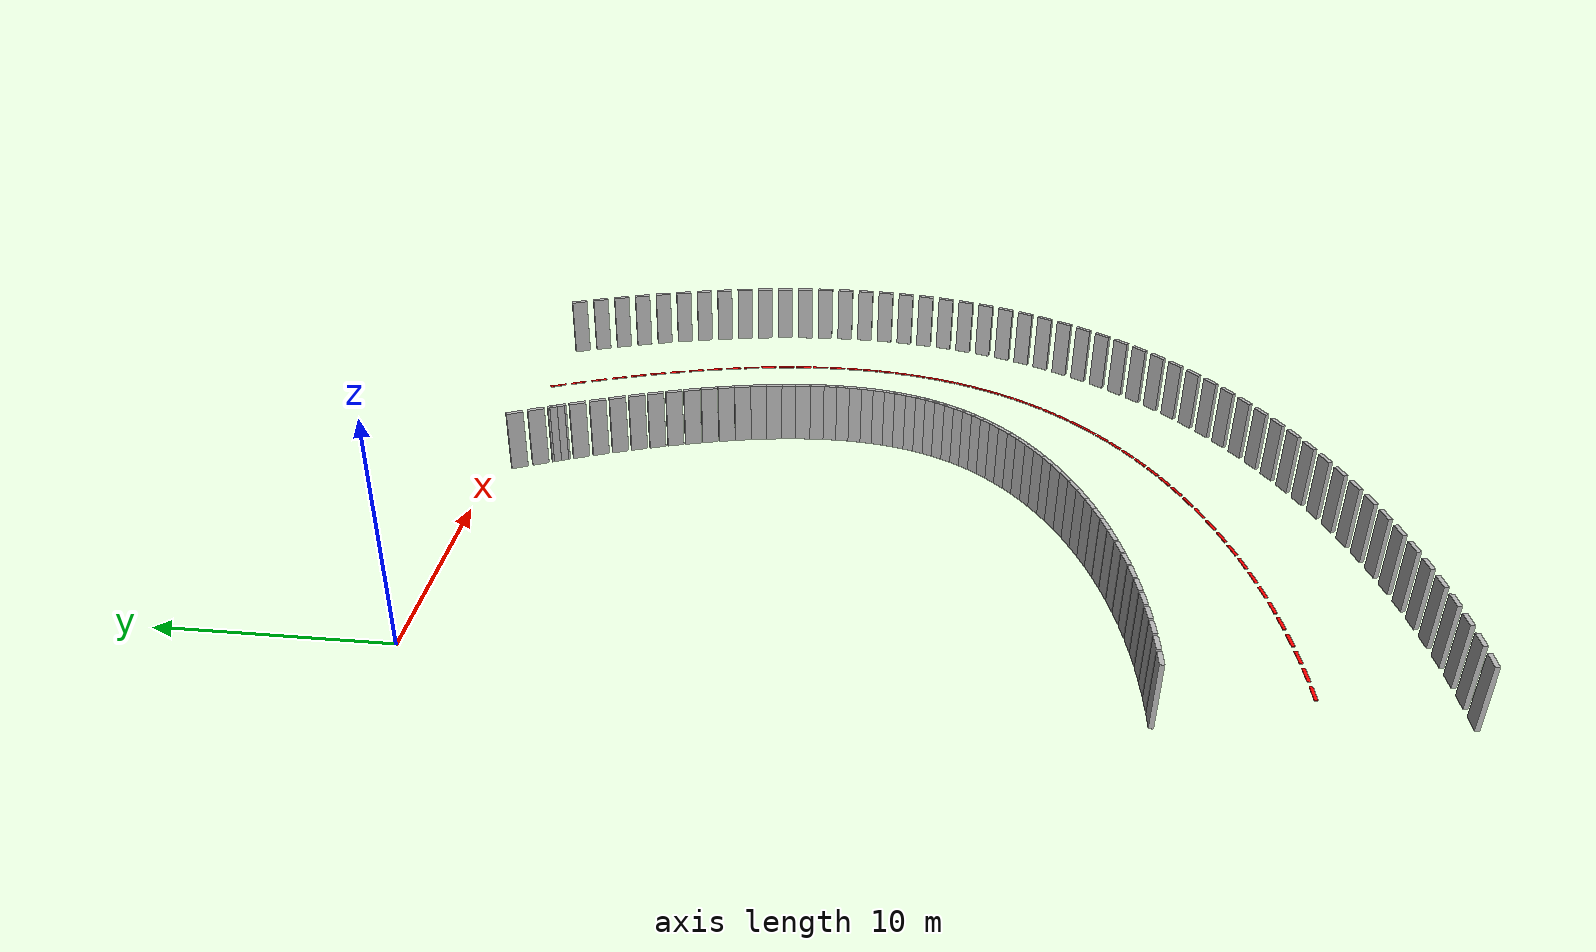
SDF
<sdf version="1.7">
 <model name="track_walls">
  <static>true</static>
  <link name="right_0">
   <pose>16.524 -2.453 0.5 0 0 -1.150</pose>
   <collision name="c"><geometry><box><size>0.8 0.2 3.0</size></box></geometry></collision>
   <visual name="v"><geometry><box><size>0.8 0.2 3.0</size></box></geometry></visual>
  </link>
  <link name="right_1">
   <pose>16.955 -3.413 0.5 0 0 -1.158</pose>
   <collision name="c"><geometry><box><size>0.8 0.2 3.0</size></box></geometry></collision>
   <visual name="v"><geometry><box><size>0.8 0.2 3.0</size></box></geometry></visual>
  </link>
  <link name="center_1">
   <pose>22.450 -1.004 0.010 0 0 -1.158</pose>
   <visual name="v">
    <geometry><box><size>0.8 0.15 0.02</size></box></geometry>
    <material><ambient>1 0 0 1</ambient><diffuse>1 0 0 1</diffuse></material>
   </visual>
  </link>
  <link name="right_2">
   <pose>17.345 -4.324 0.5 0 0 -1.174</pose>
   <collision name="c"><geometry><box><size>0.8 0.2 3.0</size></box></geometry></collision>
   <visual name="v"><geometry><box><size>0.8 0.2 3.0</size></box></geometry></visual>
  </link>
  <link name="center_2">
   <pose>22.880 -2.007 0.010 0 0 -1.174</pose>
   <visual name="v">
    <geometry><box><size>0.8 0.15 0.02</size></box></geometry>
    <material><ambient>1 0 0 1</ambient><diffuse>1 0 0 1</diffuse></material>
   </visual>
  </link>
  <link name="left_3">
   <pose>28.864 -0.792 0.5 0 0 -1.192</pose>
   <collision name="c"><geometry><box><size>0.8 0.2 3.0</size></box></geometry></collision>
   <visual name="v"><geometry><box><size>0.8 0.2 3.0</size></box></geometry></visual>
  </link>
  <link name="right_3">
   <pose>17.714 -5.226 0.5 0 0 -1.192</pose>
   <collision name="c"><geometry><box><size>0.8 0.2 3.0</size></box></geometry></collision>
   <visual name="v"><geometry><box><size>0.8 0.2 3.0</size></box></geometry></visual>
  </link>
  <link name="center_3">
   <pose>23.289 -3.009 0.010 0 0 -1.192</pose>
   <visual name="v">
    <geometry><box><size>0.8 0.15 0.02</size></box></geometry>
    <material><ambient>1 0 0 1</ambient><diffuse>1 0 0 1</diffuse></material>
   </visual>
  </link>
  <link name="left_4">
   <pose>29.293 -1.899 0.5 0 0 -1.212</pose>
   <collision name="c"><geometry><box><size>0.8 0.2 3.0</size></box></geometry></collision>
   <visual name="v"><geometry><box><size>0.8 0.2 3.0</size></box></geometry></visual>
  </link>
  <link name="right_4">
   <pose>18.058 -6.117 0.5 0 0 -1.212</pose>
   <collision name="c"><geometry><box><size>0.8 0.2 3.0</size></box></geometry></collision>
   <visual name="v"><geometry><box><size>0.8 0.2 3.0</size></box></geometry></visual>
  </link>
  <link name="center_4">
   <pose>23.675 -4.008 0.010 0 0 -1.212</pose>
   <visual name="v">
    <geometry><box><size>0.8 0.15 0.02</size></box></geometry>
    <material><ambient>1 0 0 1</ambient><diffuse>1 0 0 1</diffuse></material>
   </visual>
  </link>
  <link name="left_5">
   <pose>29.697 -3.011 0.5 0 0 -1.232</pose>
   <collision name="c"><geometry><box><size>0.8 0.2 3.0</size></box></geometry></collision>
   <visual name="v"><geometry><box><size>0.8 0.2 3.0</size></box></geometry></visual>
  </link>
  <link name="right_5">
   <pose>18.378 -6.996 0.5 0 0 -1.232</pose>
   <collision name="c"><geometry><box><size>0.8 0.2 3.0</size></box></geometry></collision>
   <visual name="v"><geometry><box><size>0.8 0.2 3.0</size></box></geometry></visual>
  </link>
  <link name="center_5">
   <pose>24.038 -5.004 0.010 0 0 -1.232</pose>
   <visual name="v">
    <geometry><box><size>0.8 0.15 0.02</size></box></geometry>
    <material><ambient>1 0 0 1</ambient><diffuse>1 0 0 1</diffuse></material>
   </visual>
  </link>
  <link name="left_6">
   <pose>30.077 -4.129 0.5 0 0 -1.254</pose>
   <collision name="c"><geometry><box><size>0.8 0.2 3.0</size></box></geometry></collision>
   <visual name="v"><geometry><box><size>0.8 0.2 3.0</size></box></geometry></visual>
  </link>
  <link name="right_6">
   <pose>18.673 -7.862 0.5 0 0 -1.254</pose>
   <collision name="c"><geometry><box><size>0.8 0.2 3.0</size></box></geometry></collision>
   <visual name="v"><geometry><box><size>0.8 0.2 3.0</size></box></geometry></visual>
  </link>
  <link name="center_6">
   <pose>24.375 -5.995 0.010 0 0 -1.254</pose>
   <visual name="v">
    <geometry><box><size>0.8 0.15 0.02</size></box></geometry>
    <material><ambient>1 0 0 1</ambient><diffuse>1 0 0 1</diffuse></material>
   </visual>
  </link>
  <link name="left_7">
   <pose>30.430 -5.251 0.5 0 0 -1.278</pose>
   <collision name="c"><geometry><box><size>0.8 0.2 3.0</size></box></geometry></collision>
   <visual name="v"><geometry><box><size>0.8 0.2 3.0</size></box></geometry></visual>
  </link>
  <link name="right_7">
   <pose>18.940 -8.713 0.5 0 0 -1.278</pose>
   <collision name="c"><geometry><box><size>0.8 0.2 3.0</size></box></geometry></collision>
   <visual name="v"><geometry><box><size>0.8 0.2 3.0</size></box></geometry></visual>
  </link>
  <link name="center_7">
   <pose>24.685 -6.982 0.010 0 0 -1.278</pose>
   <visual name="v">
    <geometry><box><size>0.8 0.15 0.02</size></box></geometry>
    <material><ambient>1 0 0 1</ambient><diffuse>1 0 0 1</diffuse></material>
   </visual>
  </link>
  <link name="left_8">
   <pose>30.755 -6.378 0.5 0 0 -1.304</pose>
   <collision name="c"><geometry><box><size>0.8 0.2 3.0</size></box></geometry></collision>
   <visual name="v"><geometry><box><size>0.8 0.2 3.0</size></box></geometry></visual>
  </link>
  <link name="right_8">
   <pose>19.181 -9.548 0.5 0 0 -1.304</pose>
   <collision name="c"><geometry><box><size>0.8 0.2 3.0</size></box></geometry></collision>
   <visual name="v"><geometry><box><size>0.8 0.2 3.0</size></box></geometry></visual>
  </link>
  <link name="center_8">
   <pose>24.968 -7.963 0.010 0 0 -1.304</pose>
   <visual name="v">
    <geometry><box><size>0.8 0.15 0.02</size></box></geometry>
    <material><ambient>1 0 0 1</ambient><diffuse>1 0 0 1</diffuse></material>
   </visual>
  </link>
  <link name="left_9">
   <pose>31.049 -7.510 0.5 0 0 -1.331</pose>
   <collision name="c"><geometry><box><size>0.8 0.2 3.0</size></box></geometry></collision>
   <visual name="v"><geometry><box><size>0.8 0.2 3.0</size></box></geometry></visual>
  </link>
  <link name="right_9">
   <pose>19.393 -10.365 0.5 0 0 -1.331</pose>
   <collision name="c"><geometry><box><size>0.8 0.2 3.0</size></box></geometry></collision>
   <visual name="v"><geometry><box><size>0.8 0.2 3.0</size></box></geometry></visual>
  </link>
  <link name="center_9">
   <pose>25.221 -8.937 0.010 0 0 -1.331</pose>
   <visual name="v">
    <geometry><box><size>0.8 0.15 0.02</size></box></geometry>
    <material><ambient>1 0 0 1</ambient><diffuse>1 0 0 1</diffuse></material>
   </visual>
  </link>
  <link name="left_10">
   <pose>31.310 -8.645 0.5 0 0 -1.359</pose>
   <collision name="c"><geometry><box><size>0.8 0.2 3.0</size></box></geometry></collision>
   <visual name="v"><geometry><box><size>0.8 0.2 3.0</size></box></geometry></visual>
  </link>
  <link name="right_10">
   <pose>19.577 -11.164 0.5 0 0 -1.359</pose>
   <collision name="c"><geometry><box><size>0.8 0.2 3.0</size></box></geometry></collision>
   <visual name="v"><geometry><box><size>0.8 0.2 3.0</size></box></geometry></visual>
  </link>
  <link name="center_10">
   <pose>25.443 -9.904 0.010 0 0 -1.359</pose>
   <visual name="v">
    <geometry><box><size>0.8 0.15 0.02</size></box></geometry>
    <material><ambient>1 0 0 1</ambient><diffuse>1 0 0 1</diffuse></material>
   </visual>
  </link>
  <link name="left_11">
   <pose>31.536 -9.784 0.5 0 0 -1.390</pose>
   <collision name="c"><geometry><box><size>0.8 0.2 3.0</size></box></geometry></collision>
   <visual name="v"><geometry><box><size>0.8 0.2 3.0</size></box></geometry></visual>
  </link>
  <link name="right_11">
   <pose>19.732 -11.943 0.5 0 0 -1.390</pose>
   <collision name="c"><geometry><box><size>0.8 0.2 3.0</size></box></geometry></collision>
   <visual name="v"><geometry><box><size>0.8 0.2 3.0</size></box></geometry></visual>
  </link>
  <link name="center_11">
   <pose>25.634 -10.863 0.010 0 0 -1.390</pose>
   <visual name="v">
    <geometry><box><size>0.8 0.15 0.02</size></box></geometry>
    <material><ambient>1 0 0 1</ambient><diffuse>1 0 0 1</diffuse></material>
   </visual>
  </link>
  <link name="left_12">
   <pose>31.727 -10.926 0.5 0 0 -1.422</pose>
   <collision name="c"><geometry><box><size>0.8 0.2 3.0</size></box></geometry></collision>
   <visual name="v"><geometry><box><size>0.8 0.2 3.0</size></box></geometry></visual>
  </link>
  <link name="right_12">
   <pose>19.858 -12.700 0.5 0 0 -1.422</pose>
   <collision name="c"><geometry><box><size>0.8 0.2 3.0</size></box></geometry></collision>
   <visual name="v"><geometry><box><size>0.8 0.2 3.0</size></box></geometry></visual>
  </link>
  <link name="center_12">
   <pose>25.792 -11.813 0.010 0 0 -1.422</pose>
   <visual name="v">
    <geometry><box><size>0.8 0.15 0.02</size></box></geometry>
    <material><ambient>1 0 0 1</ambient><diffuse>1 0 0 1</diffuse></material>
   </visual>
  </link>
  <link name="left_13">
   <pose>31.878 -12.071 0.5 0 0 -1.457</pose>
   <collision name="c"><geometry><box><size>0.8 0.2 3.0</size></box></geometry></collision>
   <visual name="v"><geometry><box><size>0.8 0.2 3.0</size></box></geometry></visual>
  </link>
  <link name="right_13">
   <pose>19.956 -13.436 0.5 0 0 -1.457</pose>
   <collision name="c"><geometry><box><size>0.8 0.2 3.0</size></box></geometry></collision>
   <visual name="v"><geometry><box><size>0.8 0.2 3.0</size></box></geometry></visual>
  </link>
  <link name="center_13">
   <pose>25.917 -12.754 0.010 0 0 -1.457</pose>
   <visual name="v">
    <geometry><box><size>0.8 0.15 0.02</size></box></geometry>
    <material><ambient>1 0 0 1</ambient><diffuse>1 0 0 1</diffuse></material>
   </visual>
  </link>
  <link name="left_14">
   <pose>31.988 -13.218 0.5 0 0 -1.493</pose>
   <collision name="c"><geometry><box><size>0.8 0.2 3.0</size></box></geometry></collision>
   <visual name="v"><geometry><box><size>0.8 0.2 3.0</size></box></geometry></visual>
  </link>
  <link name="right_14">
   <pose>20.024 -14.148 0.5 0 0 -1.493</pose>
   <collision name="c"><geometry><box><size>0.8 0.2 3.0</size></box></geometry></collision>
   <visual name="v"><geometry><box><size>0.8 0.2 3.0</size></box></geometry></visual>
  </link>
  <link name="center_14">
   <pose>26.006 -13.683 0.010 0 0 -1.493</pose>
   <visual name="v">
    <geometry><box><size>0.8 0.15 0.02</size></box></geometry>
    <material><ambient>1 0 0 1</ambient><diffuse>1 0 0 1</diffuse></material>
   </visual>
  </link>
  <link name="left_15">
   <pose>32.056 -14.367 0.5 0 0 -1.532</pose>
   <collision name="c"><geometry><box><size>0.8 0.2 3.0</size></box></geometry></collision>
   <visual name="v"><geometry><box><size>0.8 0.2 3.0</size></box></geometry></visual>
  </link>
  <link name="right_15">
   <pose>20.065 -14.837 0.5 0 0 -1.532</pose>
   <collision name="c"><geometry><box><size>0.8 0.2 3.0</size></box></geometry></collision>
   <visual name="v"><geometry><box><size>0.8 0.2 3.0</size></box></geometry></visual>
  </link>
  <link name="center_15">
   <pose>26.060 -14.602 0.010 0 0 -1.532</pose>
   <visual name="v">
    <geometry><box><size>0.8 0.15 0.02</size></box></geometry>
    <material><ambient>1 0 0 1</ambient><diffuse>1 0 0 1</diffuse></material>
   </visual>
  </link>
  <link name="left_16">
   <pose>32.078 -15.515 0.5 0 0 -1.572</pose>
   <collision name="c"><geometry><box><size>0.8 0.2 3.0</size></box></geometry></collision>
   <visual name="v"><geometry><box><size>0.8 0.2 3.0</size></box></geometry></visual>
  </link>
  <link name="right_16">
   <pose>20.078 -15.502 0.5 0 0 -1.572</pose>
   <collision name="c"><geometry><box><size>0.8 0.2 3.0</size></box></geometry></collision>
   <visual name="v"><geometry><box><size>0.8 0.2 3.0</size></box></geometry></visual>
  </link>
  <link name="center_16">
   <pose>26.078 -15.508 0.010 0 0 -1.572</pose>
   <visual name="v">
    <geometry><box><size>0.8 0.15 0.02</size></box></geometry>
    <material><ambient>1 0 0 1</ambient><diffuse>1 0 0 1</diffuse></material>
   </visual>
  </link>
  <link name="left_17">
   <pose>32.053 -16.662 0.5 0 0 -1.614</pose>
   <collision name="c"><geometry><box><size>0.8 0.2 3.0</size></box></geometry></collision>
   <visual name="v"><geometry><box><size>0.8 0.2 3.0</size></box></geometry></visual>
  </link>
  <link name="right_17">
   <pose>20.064 -16.142 0.5 0 0 -1.614</pose>
   <collision name="c"><geometry><box><size>0.8 0.2 3.0</size></box></geometry></collision>
   <visual name="v"><geometry><box><size>0.8 0.2 3.0</size></box></geometry></visual>
  </link>
  <link name="center_17">
   <pose>26.058 -16.402 0.010 0 0 -1.614</pose>
   <visual name="v">
    <geometry><box><size>0.8 0.15 0.02</size></box></geometry>
    <material><ambient>1 0 0 1</ambient><diffuse>1 0 0 1</diffuse></material>
   </visual>
  </link>
  <link name="left_18">
   <pose>31.978 -17.806 0.5 0 0 -1.658</pose>
   <collision name="c"><geometry><box><size>0.8 0.2 3.0</size></box></geometry></collision>
   <visual name="v"><geometry><box><size>0.8 0.2 3.0</size></box></geometry></visual>
  </link>
  <link name="right_18">
   <pose>20.024 -16.758 0.5 0 0 -1.658</pose>
   <collision name="c"><geometry><box><size>0.8 0.2 3.0</size></box></geometry></collision>
   <visual name="v"><geometry><box><size>0.8 0.2 3.0</size></box></geometry></visual>
  </link>
  <link name="center_18">
   <pose>26.001 -17.282 0.010 0 0 -1.658</pose>
   <visual name="v">
    <geometry><box><size>0.8 0.15 0.02</size></box></geometry>
    <material><ambient>1 0 0 1</ambient><diffuse>1 0 0 1</diffuse></material>
   </visual>
  </link>
  <link name="left_19">
   <pose>31.852 -18.946 0.5 0 0 -1.704</pose>
   <collision name="c"><geometry><box><size>0.8 0.2 3.0</size></box></geometry></collision>
   <visual name="v"><geometry><box><size>0.8 0.2 3.0</size></box></geometry></visual>
  </link>
  <link name="right_19">
   <pose>19.959 -17.351 0.5 0 0 -1.704</pose>
   <collision name="c"><geometry><box><size>0.8 0.2 3.0</size></box></geometry></collision>
   <visual name="v"><geometry><box><size>0.8 0.2 3.0</size></box></geometry></visual>
  </link>
  <link name="center_19">
   <pose>25.905 -18.148 0.010 0 0 -1.704</pose>
   <visual name="v">
    <geometry><box><size>0.8 0.15 0.02</size></box></geometry>
    <material><ambient>1 0 0 1</ambient><diffuse>1 0 0 1</diffuse></material>
   </visual>
  </link>
  <link name="left_20">
   <pose>31.673 -20.078 0.5 0 0 -1.752</pose>
   <collision name="c"><geometry><box><size>0.8 0.2 3.0</size></box></geometry></collision>
   <visual name="v"><geometry><box><size>0.8 0.2 3.0</size></box></geometry></visual>
  </link>
  <link name="right_20">
   <pose>19.869 -17.920 0.5 0 0 -1.752</pose>
   <collision name="c"><geometry><box><size>0.8 0.2 3.0</size></box></geometry></collision>
   <visual name="v"><geometry><box><size>0.8 0.2 3.0</size></box></geometry></visual>
  </link>
  <link name="center_20">
   <pose>25.771 -18.999 0.010 0 0 -1.752</pose>
   <visual name="v">
    <geometry><box><size>0.8 0.15 0.02</size></box></geometry>
    <material><ambient>1 0 0 1</ambient><diffuse>1 0 0 1</diffuse></material>
   </visual>
  </link>
  <link name="left_21">
   <pose>31.439 -21.201 0.5 0 0 -1.801</pose>
   <collision name="c"><geometry><box><size>0.8 0.2 3.0</size></box></geometry></collision>
   <visual name="v"><geometry><box><size>0.8 0.2 3.0</size></box></geometry></visual>
  </link>
  <link name="right_21">
   <pose>19.755 -18.468 0.5 0 0 -1.801</pose>
   <collision name="c"><geometry><box><size>0.8 0.2 3.0</size></box></geometry></collision>
   <visual name="v"><geometry><box><size>0.8 0.2 3.0</size></box></geometry></visual>
  </link>
  <link name="center_21">
   <pose>25.597 -19.835 0.010 0 0 -1.801</pose>
   <visual name="v">
    <geometry><box><size>0.8 0.15 0.02</size></box></geometry>
    <material><ambient>1 0 0 1</ambient><diffuse>1 0 0 1</diffuse></material>
   </visual>
  </link>
  <link name="left_22">
   <pose>31.150 -22.312 0.5 0 0 -1.851</pose>
   <collision name="c"><geometry><box><size>0.8 0.2 3.0</size></box></geometry></collision>
   <visual name="v"><geometry><box><size>0.8 0.2 3.0</size></box></geometry></visual>
  </link>
  <link name="right_22">
   <pose>19.617 -18.995 0.5 0 0 -1.851</pose>
   <collision name="c"><geometry><box><size>0.8 0.2 3.0</size></box></geometry></collision>
   <visual name="v"><geometry><box><size>0.8 0.2 3.0</size></box></geometry></visual>
  </link>
  <link name="center_22">
   <pose>25.384 -20.654 0.010 0 0 -1.851</pose>
   <visual name="v">
    <geometry><box><size>0.8 0.15 0.02</size></box></geometry>
    <material><ambient>1 0 0 1</ambient><diffuse>1 0 0 1</diffuse></material>
   </visual>
  </link>
  <link name="left_23">
   <pose>30.804 -23.408 0.5 0 0 -1.902</pose>
   <collision name="c"><geometry><box><size>0.8 0.2 3.0</size></box></geometry></collision>
   <visual name="v"><geometry><box><size>0.8 0.2 3.0</size></box></geometry></visual>
  </link>
  <link name="right_23">
   <pose>19.457 -19.504 0.5 0 0 -1.902</pose>
   <collision name="c"><geometry><box><size>0.8 0.2 3.0</size></box></geometry></collision>
   <visual name="v"><geometry><box><size>0.8 0.2 3.0</size></box></geometry></visual>
  </link>
  <link name="center_23">
   <pose>25.131 -21.456 0.010 0 0 -1.902</pose>
   <visual name="v">
    <geometry><box><size>0.8 0.15 0.02</size></box></geometry>
    <material><ambient>1 0 0 1</ambient><diffuse>1 0 0 1</diffuse></material>
   </visual>
  </link>
  <link name="left_24">
   <pose>30.402 -24.485 0.5 0 0 -1.954</pose>
   <collision name="c"><geometry><box><size>0.8 0.2 3.0</size></box></geometry></collision>
   <visual name="v"><geometry><box><size>0.8 0.2 3.0</size></box></geometry></visual>
  </link>
  <link name="right_24">
   <pose>19.274 -19.996 0.5 0 0 -1.954</pose>
   <collision name="c"><geometry><box><size>0.8 0.2 3.0</size></box></geometry></collision>
   <visual name="v"><geometry><box><size>0.8 0.2 3.0</size></box></geometry></visual>
  </link>
  <link name="center_24">
   <pose>24.838 -22.240 0.010 0 0 -1.954</pose>
   <visual name="v">
    <geometry><box><size>0.8 0.15 0.02</size></box></geometry>
    <material><ambient>1 0 0 1</ambient><diffuse>1 0 0 1</diffuse></material>
   </visual>
  </link>
  <link name="left_25">
   <pose>29.944 -25.540 0.5 0 0 -2.007</pose>
   <collision name="c"><geometry><box><size>0.8 0.2 3.0</size></box></geometry></collision>
   <visual name="v"><geometry><box><size>0.8 0.2 3.0</size></box></geometry></visual>
  </link>
  <link name="right_25">
   <pose>19.067 -20.472 0.5 0 0 -2.007</pose>
   <collision name="c"><geometry><box><size>0.8 0.2 3.0</size></box></geometry></collision>
   <visual name="v"><geometry><box><size>0.8 0.2 3.0</size></box></geometry></visual>
  </link>
  <link name="center_25">
   <pose>24.505 -23.006 0.010 0 0 -2.007</pose>
   <visual name="v">
    <geometry><box><size>0.8 0.15 0.02</size></box></geometry>
    <material><ambient>1 0 0 1</ambient><diffuse>1 0 0 1</diffuse></material>
   </visual>
  </link>
  <link name="left_26">
   <pose>29.430 -26.571 0.5 0 0 -2.060</pose>
   <collision name="c"><geometry><box><size>0.8 0.2 3.0</size></box></geometry></collision>
   <visual name="v"><geometry><box><size>0.8 0.2 3.0</size></box></geometry></visual>
  </link>
  <link name="right_26">
   <pose>18.835 -20.936 0.5 0 0 -2.060</pose>
   <collision name="c"><geometry><box><size>0.8 0.2 3.0</size></box></geometry></collision>
   <visual name="v"><geometry><box><size>0.8 0.2 3.0</size></box></geometry></visual>
  </link>
  <link name="center_26">
   <pose>24.133 -23.753 0.010 0 0 -2.060</pose>
   <visual name="v">
    <geometry><box><size>0.8 0.15 0.02</size></box></geometry>
    <material><ambient>1 0 0 1</ambient><diffuse>1 0 0 1</diffuse></material>
   </visual>
  </link>
  <link name="left_27">
   <pose>28.863 -27.573 0.5 0 0 -2.112</pose>
   <collision name="c"><geometry><box><size>0.8 0.2 3.0</size></box></geometry></collision>
   <visual name="v"><geometry><box><size>0.8 0.2 3.0</size></box></geometry></visual>
  </link>
  <link name="right_27">
   <pose>18.579 -21.389 0.5 0 0 -2.112</pose>
   <collision name="c"><geometry><box><size>0.8 0.2 3.0</size></box></geometry></collision>
   <visual name="v"><geometry><box><size>0.8 0.2 3.0</size></box></geometry></visual>
  </link>
  <link name="center_27">
   <pose>23.721 -24.481 0.010 0 0 -2.112</pose>
   <visual name="v">
    <geometry><box><size>0.8 0.15 0.02</size></box></geometry>
    <material><ambient>1 0 0 1</ambient><diffuse>1 0 0 1</diffuse></material>
   </visual>
  </link>
  <link name="left_28">
   <pose>28.243 -28.546 0.5 0 0 -2.165</pose>
   <collision name="c"><geometry><box><size>0.8 0.2 3.0</size></box></geometry></collision>
   <visual name="v"><geometry><box><size>0.8 0.2 3.0</size></box></geometry></visual>
  </link>
  <link name="right_28">
   <pose>18.297 -21.831 0.5 0 0 -2.165</pose>
   <collision name="c"><geometry><box><size>0.8 0.2 3.0</size></box></geometry></collision>
   <visual name="v"><geometry><box><size>0.8 0.2 3.0</size></box></geometry></visual>
  </link>
  <link name="center_28">
   <pose>23.270 -25.189 0.010 0 0 -2.165</pose>
   <visual name="v">
    <geometry><box><size>0.8 0.15 0.02</size></box></geometry>
    <material><ambient>1 0 0 1</ambient><diffuse>1 0 0 1</diffuse></material>
   </visual>
  </link>
  <link name="left_29">
   <pose>27.572 -29.485 0.5 0 0 -2.216</pose>
   <collision name="c"><geometry><box><size>0.8 0.2 3.0</size></box></geometry></collision>
   <visual name="v"><geometry><box><size>0.8 0.2 3.0</size></box></geometry></visual>
  </link>
  <link name="right_29">
   <pose>17.987 -22.265 0.5 0 0 -2.216</pose>
   <collision name="c"><geometry><box><size>0.8 0.2 3.0</size></box></geometry></collision>
   <visual name="v"><geometry><box><size>0.8 0.2 3.0</size></box></geometry></visual>
  </link>
  <link name="center_29">
   <pose>22.780 -25.875 0.010 0 0 -2.216</pose>
   <visual name="v">
    <geometry><box><size>0.8 0.15 0.02</size></box></geometry>
    <material><ambient>1 0 0 1</ambient><diffuse>1 0 0 1</diffuse></material>
   </visual>
  </link>
  <link name="left_30">
   <pose>26.854 -30.390 0.5 0 0 -2.267</pose>
   <collision name="c"><geometry><box><size>0.8 0.2 3.0</size></box></geometry></collision>
   <visual name="v"><geometry><box><size>0.8 0.2 3.0</size></box></geometry></visual>
  </link>
  <link name="right_30">
   <pose>17.649 -22.691 0.5 0 0 -2.267</pose>
   <collision name="c"><geometry><box><size>0.8 0.2 3.0</size></box></geometry></collision>
   <visual name="v"><geometry><box><size>0.8 0.2 3.0</size></box></geometry></visual>
  </link>
  <link name="center_30">
   <pose>22.251 -26.541 0.010 0 0 -2.267</pose>
   <visual name="v">
    <geometry><box><size>0.8 0.15 0.02</size></box></geometry>
    <material><ambient>1 0 0 1</ambient><diffuse>1 0 0 1</diffuse></material>
   </visual>
  </link>
  <link name="left_31">
   <pose>26.090 -31.258 0.5 0 0 -2.317</pose>
   <collision name="c"><geometry><box><size>0.8 0.2 3.0</size></box></geometry></collision>
   <visual name="v"><geometry><box><size>0.8 0.2 3.0</size></box></geometry></visual>
  </link>
  <link name="right_31">
   <pose>17.280 -23.110 0.5 0 0 -2.317</pose>
   <collision name="c"><geometry><box><size>0.8 0.2 3.0</size></box></geometry></collision>
   <visual name="v"><geometry><box><size>0.8 0.2 3.0</size></box></geometry></visual>
  </link>
  <link name="center_31">
   <pose>21.685 -27.184 0.010 0 0 -2.317</pose>
   <visual name="v">
    <geometry><box><size>0.8 0.15 0.02</size></box></geometry>
    <material><ambient>1 0 0 1</ambient><diffuse>1 0 0 1</diffuse></material>
   </visual>
  </link>
  <link name="left_32">
   <pose>25.283 -32.089 0.5 0 0 -2.366</pose>
   <collision name="c"><geometry><box><size>0.8 0.2 3.0</size></box></geometry></collision>
   <visual name="v"><geometry><box><size>0.8 0.2 3.0</size></box></geometry></visual>
  </link>
  <link name="right_32">
   <pose>16.880 -23.522 0.5 0 0 -2.366</pose>
   <collision name="c"><geometry><box><size>0.8 0.2 3.0</size></box></geometry></collision>
   <visual name="v"><geometry><box><size>0.8 0.2 3.0</size></box></geometry></visual>
  </link>
  <link name="center_32">
   <pose>21.081 -27.806 0.010 0 0 -2.366</pose>
   <visual name="v">
    <geometry><box><size>0.8 0.15 0.02</size></box></geometry>
    <material><ambient>1 0 0 1</ambient><diffuse>1 0 0 1</diffuse></material>
   </visual>
  </link>
  <link name="left_33">
   <pose>24.435 -32.881 0.5 0 0 -2.413</pose>
   <collision name="c"><geometry><box><size>0.8 0.2 3.0</size></box></geometry></collision>
   <visual name="v"><geometry><box><size>0.8 0.2 3.0</size></box></geometry></visual>
  </link>
  <link name="right_33">
   <pose>16.448 -23.926 0.5 0 0 -2.413</pose>
   <collision name="c"><geometry><box><size>0.8 0.2 3.0</size></box></geometry></collision>
   <visual name="v"><geometry><box><size>0.8 0.2 3.0</size></box></geometry></visual>
  </link>
  <link name="center_33">
   <pose>20.441 -28.404 0.010 0 0 -2.413</pose>
   <visual name="v">
    <geometry><box><size>0.8 0.15 0.02</size></box></geometry>
    <material><ambient>1 0 0 1</ambient><diffuse>1 0 0 1</diffuse></material>
   </visual>
  </link>
  <link name="left_34">
   <pose>23.550 -33.635 0.5 0 0 -2.459</pose>
   <collision name="c"><geometry><box><size>0.8 0.2 3.0</size></box></geometry></collision>
   <visual name="v"><geometry><box><size>0.8 0.2 3.0</size></box></geometry></visual>
  </link>
  <link name="right_34">
   <pose>15.982 -24.323 0.5 0 0 -2.459</pose>
   <collision name="c"><geometry><box><size>0.8 0.2 3.0</size></box></geometry></collision>
   <visual name="v"><geometry><box><size>0.8 0.2 3.0</size></box></geometry></visual>
  </link>
  <link name="center_34">
   <pose>19.766 -28.979 0.010 0 0 -2.459</pose>
   <visual name="v">
    <geometry><box><size>0.8 0.15 0.02</size></box></geometry>
    <material><ambient>1 0 0 1</ambient><diffuse>1 0 0 1</diffuse></material>
   </visual>
  </link>
  <link name="left_35">
   <pose>22.630 -34.350 0.5 0 0 -2.504</pose>
   <collision name="c"><geometry><box><size>0.8 0.2 3.0</size></box></geometry></collision>
   <visual name="v"><geometry><box><size>0.8 0.2 3.0</size></box></geometry></visual>
  </link>
  <link name="right_35">
   <pose>15.482 -24.710 0.5 0 0 -2.504</pose>
   <collision name="c"><geometry><box><size>0.8 0.2 3.0</size></box></geometry></collision>
   <visual name="v"><geometry><box><size>0.8 0.2 3.0</size></box></geometry></visual>
  </link>
  <link name="center_35">
   <pose>19.056 -29.530 0.010 0 0 -2.504</pose>
   <visual name="v">
    <geometry><box><size>0.8 0.15 0.02</size></box></geometry>
    <material><ambient>1 0 0 1</ambient><diffuse>1 0 0 1</diffuse></material>
   </visual>
  </link>
  <link name="left_36">
   <pose>21.676 -35.025 0.5 0 0 -2.546</pose>
   <collision name="c"><geometry><box><size>0.8 0.2 3.0</size></box></geometry></collision>
   <visual name="v"><geometry><box><size>0.8 0.2 3.0</size></box></geometry></visual>
  </link>
  <link name="right_36">
   <pose>14.949 -25.088 0.5 0 0 -2.546</pose>
   <collision name="c"><geometry><box><size>0.8 0.2 3.0</size></box></geometry></collision>
   <visual name="v"><geometry><box><size>0.8 0.2 3.0</size></box></geometry></visual>
  </link>
  <link name="center_36">
   <pose>18.312 -30.057 0.010 0 0 -2.546</pose>
   <visual name="v">
    <geometry><box><size>0.8 0.15 0.02</size></box></geometry>
    <material><ambient>1 0 0 1</ambient><diffuse>1 0 0 1</diffuse></material>
   </visual>
  </link>
  <link name="left_37">
   <pose>20.691 -35.662 0.5 0 0 -2.588</pose>
   <collision name="c"><geometry><box><size>0.8 0.2 3.0</size></box></geometry></collision>
   <visual name="v"><geometry><box><size>0.8 0.2 3.0</size></box></geometry></visual>
  </link>
  <link name="right_37">
   <pose>14.381 -25.455 0.5 0 0 -2.588</pose>
   <collision name="c"><geometry><box><size>0.8 0.2 3.0</size></box></geometry></collision>
   <visual name="v"><geometry><box><size>0.8 0.2 3.0</size></box></geometry></visual>
  </link>
  <link name="center_37">
   <pose>17.536 -30.559 0.010 0 0 -2.588</pose>
   <visual name="v">
    <geometry><box><size>0.8 0.15 0.02</size></box></geometry>
    <material><ambient>1 0 0 1</ambient><diffuse>1 0 0 1</diffuse></material>
   </visual>
  </link>
  <link name="left_38">
   <pose>19.678 -36.261 0.5 0 0 -2.628</pose>
   <collision name="c"><geometry><box><size>0.8 0.2 3.0</size></box></geometry></collision>
   <visual name="v"><geometry><box><size>0.8 0.2 3.0</size></box></geometry></visual>
  </link>
  <link name="right_38">
   <pose>13.780 -25.811 0.5 0 0 -2.628</pose>
   <collision name="c"><geometry><box><size>0.8 0.2 3.0</size></box></geometry></collision>
   <visual name="v"><geometry><box><size>0.8 0.2 3.0</size></box></geometry></visual>
  </link>
  <link name="center_38">
   <pose>16.729 -31.036 0.010 0 0 -2.628</pose>
   <visual name="v">
    <geometry><box><size>0.8 0.15 0.02</size></box></geometry>
    <material><ambient>1 0 0 1</ambient><diffuse>1 0 0 1</diffuse></material>
   </visual>
  </link>
  <link name="left_39">
   <pose>18.638 -36.822 0.5 0 0 -2.666</pose>
   <collision name="c"><geometry><box><size>0.8 0.2 3.0</size></box></geometry></collision>
   <visual name="v"><geometry><box><size>0.8 0.2 3.0</size></box></geometry></visual>
  </link>
  <link name="right_39">
   <pose>13.145 -26.152 0.5 0 0 -2.666</pose>
   <collision name="c"><geometry><box><size>0.8 0.2 3.0</size></box></geometry></collision>
   <visual name="v"><geometry><box><size>0.8 0.2 3.0</size></box></geometry></visual>
  </link>
  <link name="center_39">
   <pose>15.892 -31.487 0.010 0 0 -2.666</pose>
   <visual name="v">
    <geometry><box><size>0.8 0.15 0.02</size></box></geometry>
    <material><ambient>1 0 0 1</ambient><diffuse>1 0 0 1</diffuse></material>
   </visual>
  </link>
  <link name="left_40">
   <pose>17.573 -37.345 0.5 0 0 -2.703</pose>
   <collision name="c"><geometry><box><size>0.8 0.2 3.0</size></box></geometry></collision>
   <visual name="v"><geometry><box><size>0.8 0.2 3.0</size></box></geometry></visual>
  </link>
  <link name="right_40">
   <pose>12.479 -26.480 0.5 0 0 -2.703</pose>
   <collision name="c"><geometry><box><size>0.8 0.2 3.0</size></box></geometry></collision>
   <visual name="v"><geometry><box><size>0.8 0.2 3.0</size></box></geometry></visual>
  </link>
  <link name="center_40">
   <pose>15.026 -31.913 0.010 0 0 -2.703</pose>
   <visual name="v">
    <geometry><box><size>0.8 0.15 0.02</size></box></geometry>
    <material><ambient>1 0 0 1</ambient><diffuse>1 0 0 1</diffuse></material>
   </visual>
  </link>
  <link name="left_41">
   <pose>16.484 -37.832 0.5 0 0 -2.739</pose>
   <collision name="c"><geometry><box><size>0.8 0.2 3.0</size></box></geometry></collision>
   <visual name="v"><geometry><box><size>0.8 0.2 3.0</size></box></geometry></visual>
  </link>
  <link name="right_41">
   <pose>11.781 -26.792 0.5 0 0 -2.739</pose>
   <collision name="c"><geometry><box><size>0.8 0.2 3.0</size></box></geometry></collision>
   <visual name="v"><geometry><box><size>0.8 0.2 3.0</size></box></geometry></visual>
  </link>
  <link name="center_41">
   <pose>14.133 -32.312 0.010 0 0 -2.739</pose>
   <visual name="v">
    <geometry><box><size>0.8 0.15 0.02</size></box></geometry>
    <material><ambient>1 0 0 1</ambient><diffuse>1 0 0 1</diffuse></material>
   </visual>
  </link>
  <link name="left_42">
   <pose>15.374 -38.282 0.5 0 0 -2.773</pose>
   <collision name="c"><geometry><box><size>0.8 0.2 3.0</size></box></geometry></collision>
   <visual name="v"><geometry><box><size>0.8 0.2 3.0</size></box></geometry></visual>
  </link>
  <link name="right_42">
   <pose>11.054 -27.087 0.5 0 0 -2.773</pose>
   <collision name="c"><geometry><box><size>0.8 0.2 3.0</size></box></geometry></collision>
   <visual name="v"><geometry><box><size>0.8 0.2 3.0</size></box></geometry></visual>
  </link>
  <link name="center_42">
   <pose>13.214 -32.684 0.010 0 0 -2.773</pose>
   <visual name="v">
    <geometry><box><size>0.8 0.15 0.02</size></box></geometry>
    <material><ambient>1 0 0 1</ambient><diffuse>1 0 0 1</diffuse></material>
   </visual>
  </link>
  <link name="left_43">
   <pose>14.244 -38.696 0.5 0 0 -2.807</pose>
   <collision name="c"><geometry><box><size>0.8 0.2 3.0</size></box></geometry></collision>
   <visual name="v"><geometry><box><size>0.8 0.2 3.0</size></box></geometry></visual>
  </link>
  <link name="right_43">
   <pose>10.299 -27.364 0.5 0 0 -2.807</pose>
   <collision name="c"><geometry><box><size>0.8 0.2 3.0</size></box></geometry></collision>
   <visual name="v"><geometry><box><size>0.8 0.2 3.0</size></box></geometry></visual>
  </link>
  <link name="center_43">
   <pose>12.271 -33.030 0.010 0 0 -2.807</pose>
   <visual name="v">
    <geometry><box><size>0.8 0.15 0.02</size></box></geometry>
    <material><ambient>1 0 0 1</ambient><diffuse>1 0 0 1</diffuse></material>
   </visual>
  </link>
  <link name="left_44">
   <pose>13.095 -39.076 0.5 0 0 -2.839</pose>
   <collision name="c"><geometry><box><size>0.8 0.2 3.0</size></box></geometry></collision>
   <visual name="v"><geometry><box><size>0.8 0.2 3.0</size></box></geometry></visual>
  </link>
  <link name="right_44">
   <pose>9.517 -27.621 0.5 0 0 -2.839</pose>
   <collision name="c"><geometry><box><size>0.8 0.2 3.0</size></box></geometry></collision>
   <visual name="v"><geometry><box><size>0.8 0.2 3.0</size></box></geometry></visual>
  </link>
  <link name="center_44">
   <pose>11.306 -33.348 0.010 0 0 -2.839</pose>
   <visual name="v">
    <geometry><box><size>0.8 0.15 0.02</size></box></geometry>
    <material><ambient>1 0 0 1</ambient><diffuse>1 0 0 1</diffuse></material>
   </visual>
  </link>
  <link name="left_45">
   <pose>11.930 -39.420 0.5 0 0 -2.870</pose>
   <collision name="c"><geometry><box><size>0.8 0.2 3.0</size></box></geometry></collision>
   <visual name="v"><geometry><box><size>0.8 0.2 3.0</size></box></geometry></visual>
  </link>
  <link name="right_45">
   <pose>8.710 -27.859 0.5 0 0 -2.870</pose>
   <collision name="c"><geometry><box><size>0.8 0.2 3.0</size></box></geometry></collision>
   <visual name="v"><geometry><box><size>0.8 0.2 3.0</size></box></geometry></visual>
  </link>
  <link name="center_45">
   <pose>10.320 -33.640 0.010 0 0 -2.870</pose>
   <visual name="v">
    <geometry><box><size>0.8 0.15 0.02</size></box></geometry>
    <material><ambient>1 0 0 1</ambient><diffuse>1 0 0 1</diffuse></material>
   </visual>
  </link>
  <link name="left_46">
   <pose>10.749 -39.729 0.5 0 0 -2.900</pose>
   <collision name="c"><geometry><box><size>0.8 0.2 3.0</size></box></geometry></collision>
   <visual name="v"><geometry><box><size>0.8 0.2 3.0</size></box></geometry></visual>
  </link>
  <link name="right_46">
   <pose>7.881 -28.077 0.5 0 0 -2.900</pose>
   <collision name="c"><geometry><box><size>0.8 0.2 3.0</size></box></geometry></collision>
   <visual name="v"><geometry><box><size>0.8 0.2 3.0</size></box></geometry></visual>
  </link>
  <link name="center_46">
   <pose>9.315 -33.903 0.010 0 0 -2.900</pose>
   <visual name="v">
    <geometry><box><size>0.8 0.15 0.02</size></box></geometry>
    <material><ambient>1 0 0 1</ambient><diffuse>1 0 0 1</diffuse></material>
   </visual>
  </link>
  <link name="left_47">
   <pose>9.554 -40.004 0.5 0 0 -2.930</pose>
   <collision name="c"><geometry><box><size>0.8 0.2 3.0</size></box></geometry></collision>
   <visual name="v"><geometry><box><size>0.8 0.2 3.0</size></box></geometry></visual>
  </link>
  <link name="right_47">
   <pose>7.032 -28.272 0.5 0 0 -2.930</pose>
   <collision name="c"><geometry><box><size>0.8 0.2 3.0</size></box></geometry></collision>
   <visual name="v"><geometry><box><size>0.8 0.2 3.0</size></box></geometry></visual>
  </link>
  <link name="center_47">
   <pose>8.293 -34.138 0.010 0 0 -2.930</pose>
   <visual name="v">
    <geometry><box><size>0.8 0.15 0.02</size></box></geometry>
    <material><ambient>1 0 0 1</ambient><diffuse>1 0 0 1</diffuse></material>
   </visual>
  </link>
  <link name="left_48">
   <pose>8.347 -40.246 0.5 0 0 -2.959</pose>
   <collision name="c"><geometry><box><size>0.8 0.2 3.0</size></box></geometry></collision>
   <visual name="v"><geometry><box><size>0.8 0.2 3.0</size></box></geometry></visual>
  </link>
  <link name="right_48">
   <pose>6.164 -28.446 0.5 0 0 -2.959</pose>
   <collision name="c"><geometry><box><size>0.8 0.2 3.0</size></box></geometry></collision>
   <visual name="v"><geometry><box><size>0.8 0.2 3.0</size></box></geometry></visual>
  </link>
  <link name="center_48">
   <pose>7.256 -34.346 0.010 0 0 -2.959</pose>
   <visual name="v">
    <geometry><box><size>0.8 0.15 0.02</size></box></geometry>
    <material><ambient>1 0 0 1</ambient><diffuse>1 0 0 1</diffuse></material>
   </visual>
  </link>
  <link name="left_49">
   <pose>7.130 -40.453 0.5 0 0 -2.987</pose>
   <collision name="c"><geometry><box><size>0.8 0.2 3.0</size></box></geometry></collision>
   <visual name="v"><geometry><box><size>0.8 0.2 3.0</size></box></geometry></visual>
  </link>
  <link name="right_49">
   <pose>5.280 -28.597 0.5 0 0 -2.987</pose>
   <collision name="c"><geometry><box><size>0.8 0.2 3.0</size></box></geometry></collision>
   <visual name="v"><geometry><box><size>0.8 0.2 3.0</size></box></geometry></visual>
  </link>
  <link name="center_49">
   <pose>6.205 -34.525 0.010 0 0 -2.987</pose>
   <visual name="v">
    <geometry><box><size>0.8 0.15 0.02</size></box></geometry>
    <material><ambient>1 0 0 1</ambient><diffuse>1 0 0 1</diffuse></material>
   </visual>
  </link>
  <link name="left_50">
   <pose>5.903 -40.627 0.5 0 0 -3.014</pose>
   <collision name="c"><geometry><box><size>0.8 0.2 3.0</size></box></geometry></collision>
   <visual name="v"><geometry><box><size>0.8 0.2 3.0</size></box></geometry></visual>
  </link>
  <link name="right_50">
   <pose>4.382 -28.724 0.5 0 0 -3.014</pose>
   <collision name="c"><geometry><box><size>0.8 0.2 3.0</size></box></geometry></collision>
   <visual name="v"><geometry><box><size>0.8 0.2 3.0</size></box></geometry></visual>
  </link>
  <link name="center_50">
   <pose>5.142 -34.675 0.010 0 0 -3.014</pose>
   <visual name="v">
    <geometry><box><size>0.8 0.15 0.02</size></box></geometry>
    <material><ambient>1 0 0 1</ambient><diffuse>1 0 0 1</diffuse></material>
   </visual>
  </link>
  <link name="left_51">
   <pose>4.669 -40.768 0.5 0 0 -3.042</pose>
   <collision name="c"><geometry><box><size>0.8 0.2 3.0</size></box></geometry></collision>
   <visual name="v"><geometry><box><size>0.8 0.2 3.0</size></box></geometry></visual>
  </link>
  <link name="right_51">
   <pose>3.472 -28.828 0.5 0 0 -3.042</pose>
   <collision name="c"><geometry><box><size>0.8 0.2 3.0</size></box></geometry></collision>
   <visual name="v"><geometry><box><size>0.8 0.2 3.0</size></box></geometry></visual>
  </link>
  <link name="center_51">
   <pose>4.071 -34.798 0.010 0 0 -3.042</pose>
   <visual name="v">
    <geometry><box><size>0.8 0.15 0.02</size></box></geometry>
    <material><ambient>1 0 0 1</ambient><diffuse>1 0 0 1</diffuse></material>
   </visual>
  </link>
  <link name="left_52">
   <pose>3.429 -40.875 0.5 0 0 -3.069</pose>
   <collision name="c"><geometry><box><size>0.8 0.2 3.0</size></box></geometry></collision>
   <visual name="v"><geometry><box><size>0.8 0.2 3.0</size></box></geometry></visual>
  </link>
  <link name="right_52">
   <pose>2.554 -28.907 0.5 0 0 -3.069</pose>
   <collision name="c"><geometry><box><size>0.8 0.2 3.0</size></box></geometry></collision>
   <visual name="v"><geometry><box><size>0.8 0.2 3.0</size></box></geometry></visual>
  </link>
  <link name="center_52">
   <pose>2.991 -34.891 0.010 0 0 -3.069</pose>
   <visual name="v">
    <geometry><box><size>0.8 0.15 0.02</size></box></geometry>
    <material><ambient>1 0 0 1</ambient><diffuse>1 0 0 1</diffuse></material>
   </visual>
  </link>
  <link name="left_53">
   <pose>2.184 -40.949 0.5 0 0 -3.095</pose>
   <collision name="c"><geometry><box><size>0.8 0.2 3.0</size></box></geometry></collision>
   <visual name="v"><geometry><box><size>0.8 0.2 3.0</size></box></geometry></visual>
  </link>
  <link name="right_53">
   <pose>1.628 -28.962 0.5 0 0 -3.095</pose>
   <collision name="c"><geometry><box><size>0.8 0.2 3.0</size></box></geometry></collision>
   <visual name="v"><geometry><box><size>0.8 0.2 3.0</size></box></geometry></visual>
  </link>
  <link name="center_53">
   <pose>1.906 -34.956 0.010 0 0 -3.095</pose>
   <visual name="v">
    <geometry><box><size>0.8 0.15 0.02</size></box></geometry>
    <material><ambient>1 0 0 1</ambient><diffuse>1 0 0 1</diffuse></material>
   </visual>
  </link>
  <link name="left_54">
   <pose>0.936 -40.991 0.5 0 0 -3.122</pose>
   <collision name="c"><geometry><box><size>0.8 0.2 3.0</size></box></geometry></collision>
   <visual name="v"><geometry><box><size>0.8 0.2 3.0</size></box></geometry></visual>
  </link>
  <link name="right_54">
   <pose>0.699 -28.993 0.5 0 0 -3.122</pose>
   <collision name="c"><geometry><box><size>0.8 0.2 3.0</size></box></geometry></collision>
   <visual name="v"><geometry><box><size>0.8 0.2 3.0</size></box></geometry></visual>
  </link>
  <link name="center_54">
   <pose>0.818 -34.992 0.010 0 0 -3.122</pose>
   <visual name="v">
    <geometry><box><size>0.8 0.15 0.02</size></box></geometry>
    <material><ambient>1 0 0 1</ambient><diffuse>1 0 0 1</diffuse></material>
   </visual>
  </link>
  <link name="right_55">
   <pose>-0.233 -28.999 0.5 0 0 3.135</pose>
   <collision name="c"><geometry><box><size>0.8 0.2 3.0</size></box></geometry></collision>
   <visual name="v"><geometry><box><size>0.8 0.2 3.0</size></box></geometry></visual>
  </link>
  <link name="right_217">
   <pose>15.661 -0.636 0.5 0 0 -1.115</pose>
   <collision name="c"><geometry><box><size>0.8 0.2 3.0</size></box></geometry></collision>
   <visual name="v"><geometry><box><size>0.8 0.2 3.0</size></box></geometry></visual>
  </link>
  <link name="right_218">
   <pose>16.111 -1.568 0.5 0 0 -1.128</pose>
   <collision name="c"><geometry><box><size>0.8 0.2 3.0</size></box></geometry></collision>
   <visual name="v"><geometry><box><size>0.8 0.2 3.0</size></box></geometry></visual>
  </link>
  <link name="right_219">
   <pose>16.561 -2.534 0.5 0 0 -1.135</pose>
   <collision name="c"><geometry><box><size>0.8 0.2 3.0</size></box></geometry></collision>
   <visual name="v"><geometry><box><size>0.8 0.2 3.0</size></box></geometry></visual>
  </link>
 </model>
</sdf>
